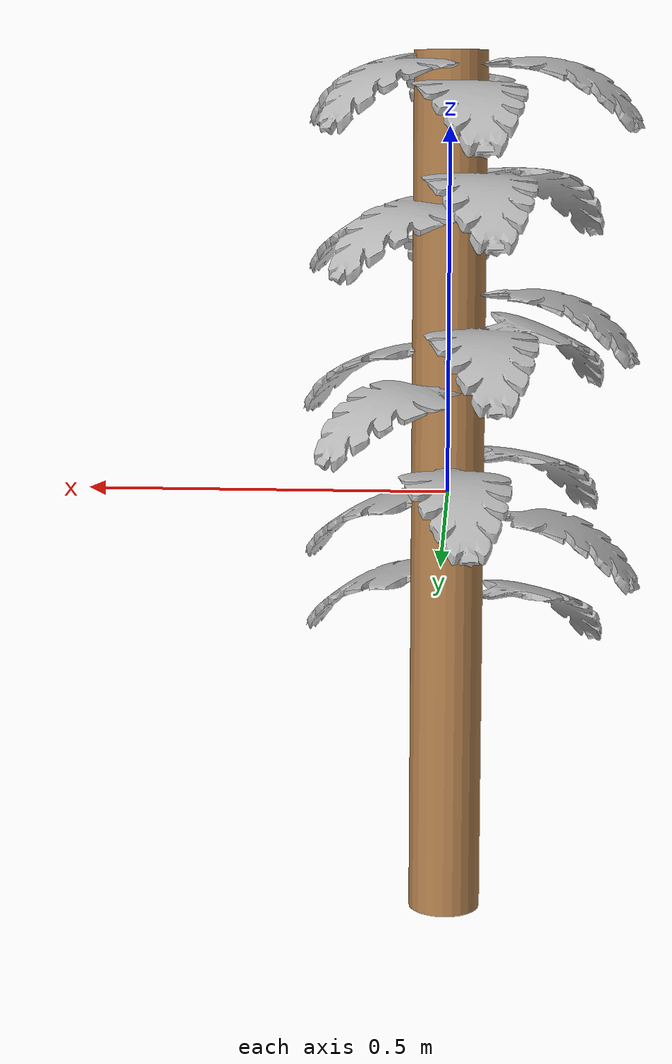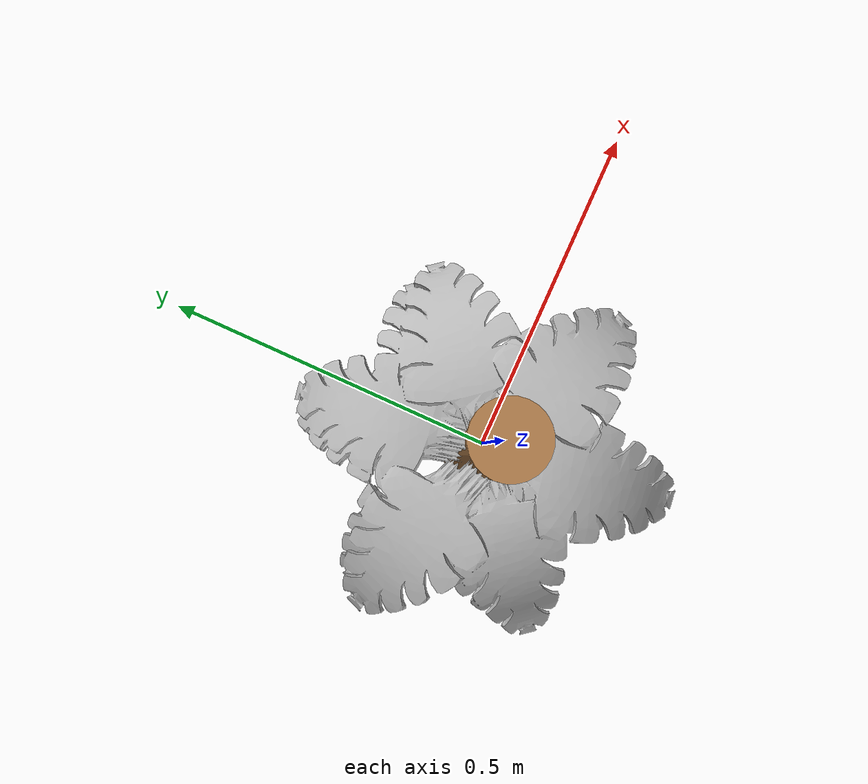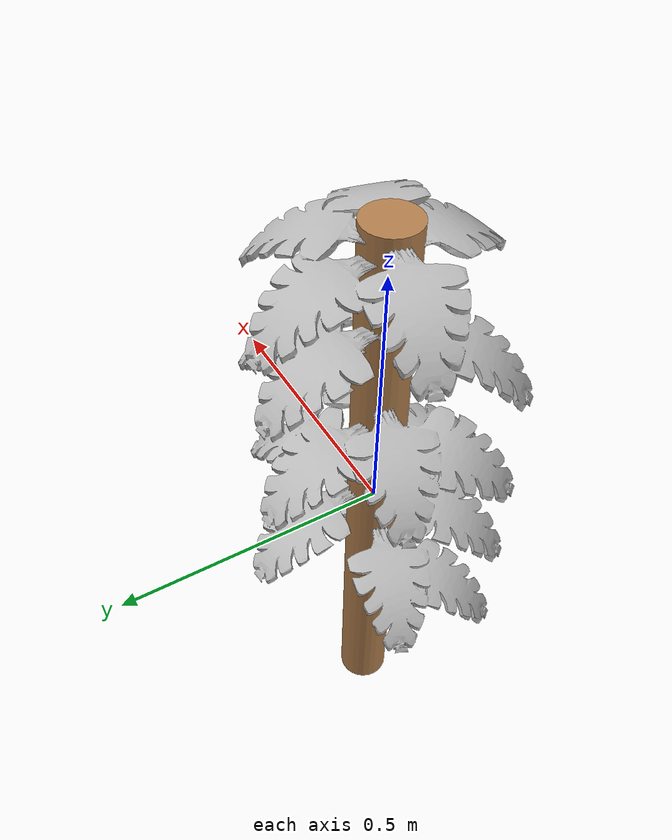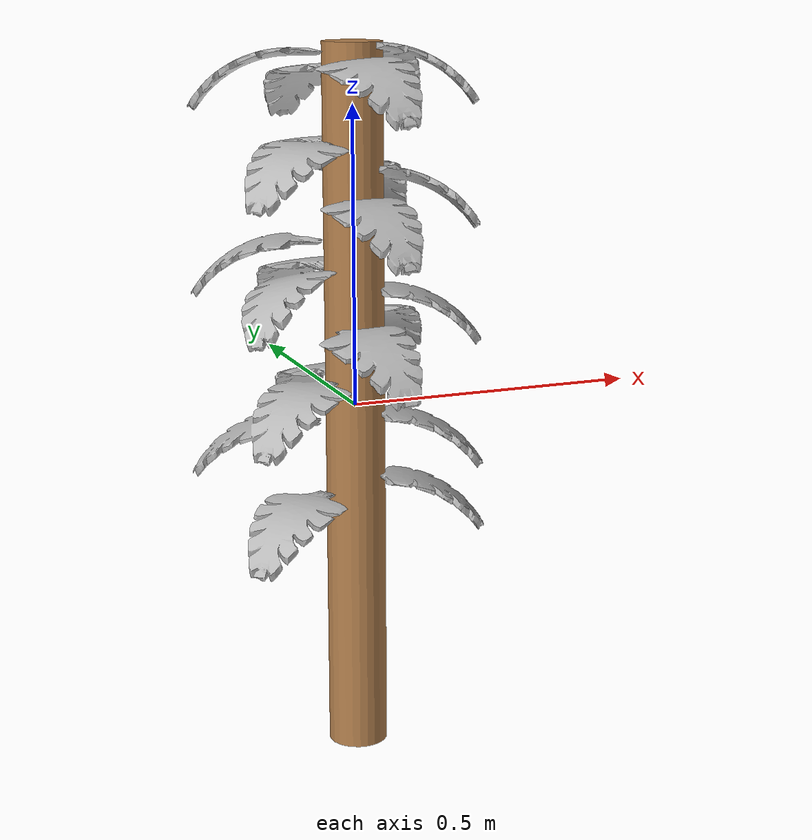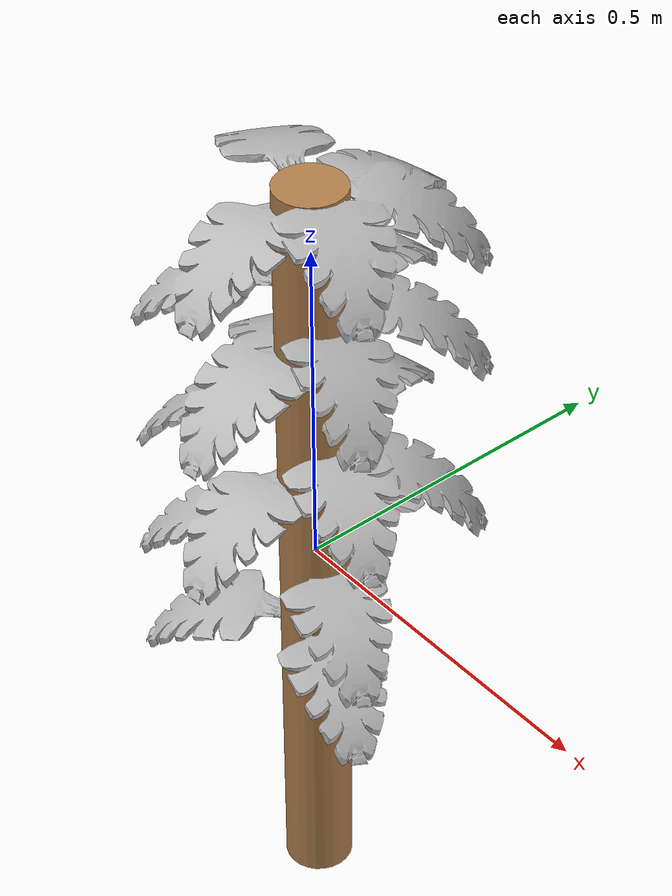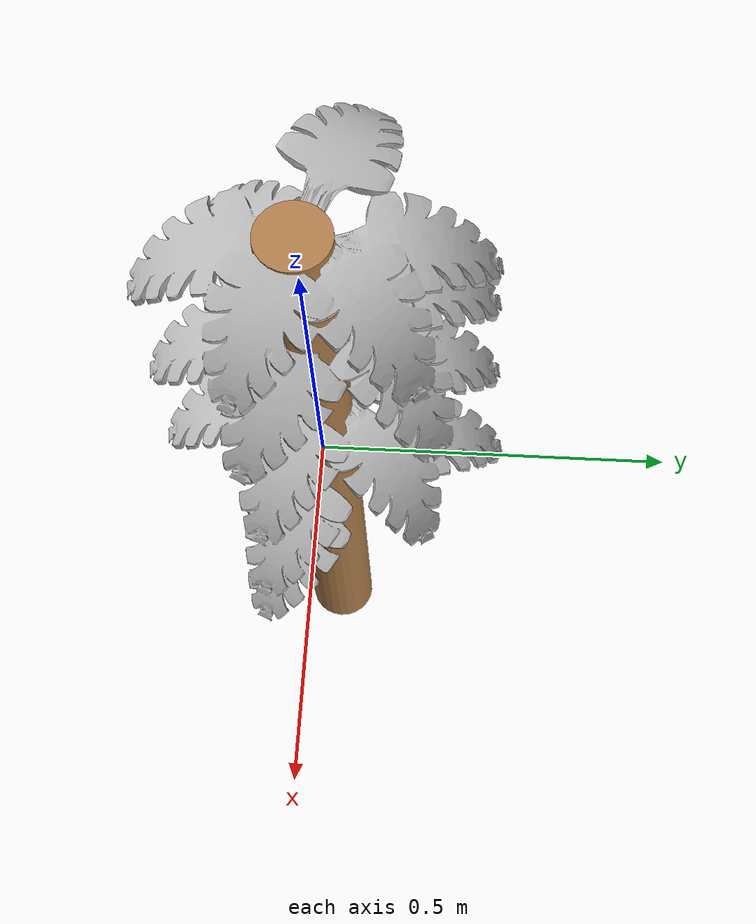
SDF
<?xml version="1.0" ?>
<sdf version="1.5">
  <model name="bush">
    <static>true</static>
    <link name="link">
      <pose frame=''>-0.439275 0.4 0.1 0 -0 0</pose>
      <collision name="collision">
        <geometry>
          <mesh>
            <uri>model://urdf/cad/bush.dae</uri>
            <scale>1 1 1</scale>
          </mesh>
        </geometry>
        <surface>
          <friction>
            <ode>
              <mu>100</mu>
              <mu2>50</mu2>
            </ode>
          </friction>
        </surface>
      </collision>
      <visual name="visual">
        <cast_shadows>false</cast_shadows>
        <geometry>
          <mesh>
            <uri>model://urdf/cad/bush.dae</uri>
            <scale>1 1 1</scale>
          </mesh>
        </geometry>
        <material>
          <script>
            <uri>model://urdf/gazebo.material</uri>
            <name>Gazebo/Bamboo_image</name>
          </script>
        </material>
      </visual>
    </link>
    <link name="stem">
      <collision name="collision">
        <geometry>
          <cylinder>
            <radius>0.05</radius>
            <length>1.2</length>
          </cylinder>
        </geometry>
        <surface>
          <friction>
            <ode>
              <mu>100</mu>
              <mu2>50</mu2>
            </ode>
          </friction>
        </surface>
      </collision>
      <visual name="visual">
        <cast_shadows>false</cast_shadows>
        <geometry>
          <cylinder>
            <radius>0.05</radius>
            <length>1.2</length>
          </cylinder>
        </geometry>
        <material>
          <script>
            <uri>file://media/materials/scripts/gazebo.material</uri>
            <name>Gazebo/Wood</name>
          </script>
        </material>
      </visual>
    </link>
  </model>
</sdf>
